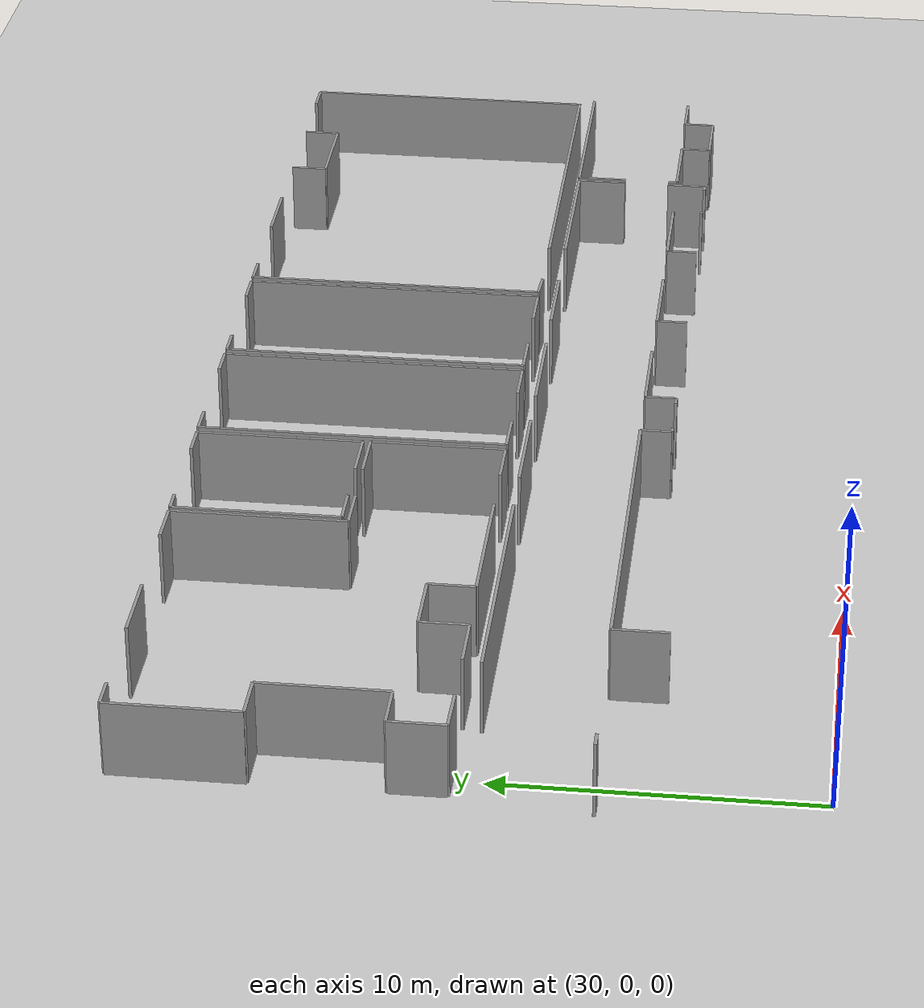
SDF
<sdf version="1.6">
 <world name="default">
  <model name="ground_plane">
   <static>1</static>
   <link name="link">
    <collision name="collision">
     <geometry><plane><normal>0 0 1</normal><size>100 100</size></plane></geometry>
     <surface><friction><ode><mu>100</mu><mu2>50</mu2></ode></friction></surface>
    </collision>
    <visual name="visual">
     <cast_shadows>0</cast_shadows>
     <geometry><plane><normal>0 0 1</normal><size>100 100</size></plane></geometry>
     <material>
      <script><uri>file://media/materials/scripts/gazebo.material</uri><name>Gazebo/Grey</name></script>
     </material>
    </visual>
   </link>
  </model>
  <model name="50055639">
   <static>1</static>
   <link name="Wall_416">
    <collision name="Wall_416_Collision">
     <geometry><box><size>0.527932570863 0.1 2.5</size></box></geometry>
     <pose>0.263966285431 0 1.25 0 0 0</pose>
    </collision>
    <visual name="Wall_416_Visual">
     <pose>0.263966285431 0 1.25 0 0 0</pose>
     <geometry><box><size>0.527932570863 0.1 2.5</size></box></geometry>
     <material>
      <script><uri>file://media/materials/scripts/gazebo.material</uri><name>Gazebo/Grey</name></script>
      <ambient>1 1 1 1</ambient>
     </material>
    </visual>
    <pose>99.7402861169 -14.176671448 0 0 0 3.14159265359</pose>
   </link>
   <link name="Wall_418">
    <collision name="Wall_418_Collision">
     <geometry><box><size>8.68721359753 0.1 2.5</size></box></geometry>
     <pose>4.34360679877 0 1.25 0 0 0</pose>
    </collision>
    <visual name="Wall_418_Visual">
     <pose>4.34360679877 0 1.25 0 0 0</pose>
     <geometry><box><size>8.68721359753 0.1 2.5</size></box></geometry>
     <material>
      <script><uri>file://media/materials/scripts/gazebo.material</uri><name>Gazebo/Grey</name></script>
      <ambient>1 1 1 1</ambient>
     </material>
    </visual>
    <pose>102.878051257 -10.5719036799 0 0 0 0.0</pose>
   </link>
   <link name="Wall_419">
    <collision name="Wall_419_Collision">
     <geometry><box><size>3.55805481156 0.1 2.5</size></box></geometry>
     <pose>1.77902740578 0 1.25 0 0 0</pose>
    </collision>
    <visual name="Wall_419_Visual">
     <pose>1.77902740578 0 1.25 0 0 0</pose>
     <geometry><box><size>3.55805481156 0.1 2.5</size></box></geometry>
     <material>
      <script><uri>file://media/materials/scripts/gazebo.material</uri><name>Gazebo/Grey</name></script>
      <ambient>1 1 1 1</ambient>
     </material>
    </visual>
    <pose>113.171022734 -10.5719036799 0 0 0 0.0</pose>
   </link>
   <link name="Wall_420">
    <collision name="Wall_420_Collision">
     <geometry><box><size>3.59994414755 0.1 2.5</size></box></geometry>
     <pose>1.79997207378 0 1.25 0 0 0</pose>
    </collision>
    <visual name="Wall_420_Visual">
     <pose>1.79997207378 0 1.25 0 0 0</pose>
     <geometry><box><size>3.59994414755 0.1 2.5</size></box></geometry>
     <material>
      <script><uri>file://media/materials/scripts/gazebo.material</uri><name>Gazebo/Grey</name></script>
      <ambient>1 1 1 1</ambient>
     </material>
    </visual>
    <pose>118.30310108 -10.5719036799 0 0 0 0.0</pose>
   </link>
   <link name="Wall_421">
    <collision name="Wall_421_Collision">
     <geometry><box><size>2.88655606189 0.1 2.5</size></box></geometry>
     <pose>1.44327803095 0 1.25 0 0 0</pose>
    </collision>
    <visual name="Wall_421_Visual">
     <pose>1.44327803095 0 1.25 0 0 0</pose>
     <geometry><box><size>2.88655606189 0.1 2.5</size></box></geometry>
     <material>
      <script><uri>file://media/materials/scripts/gazebo.material</uri><name>Gazebo/Grey</name></script>
      <ambient>1 1 1 1</ambient>
     </material>
    </visual>
    <pose>123.488493126 -10.5719036799 0 0 0 0.0</pose>
   </link>
   <link name="Wall_422">
    <collision name="Wall_422_Collision">
     <geometry><box><size>5.4189568286 0.1 2.5</size></box></geometry>
     <pose>2.7094784143 0 1.25 0 0 0</pose>
    </collision>
    <visual name="Wall_422_Visual">
     <pose>2.7094784143 0 1.25 0 0 0</pose>
     <geometry><box><size>5.4189568286 0.1 2.5</size></box></geometry>
     <material>
      <script><uri>file://media/materials/scripts/gazebo.material</uri><name>Gazebo/Grey</name></script>
      <ambient>1 1 1 1</ambient>
     </material>
    </visual>
    <pose>128.70308077 -10.5719036799 0 0 0 0.0</pose>
   </link>
   <link name="Wall_423">
    <collision name="Wall_423_Collision">
     <geometry><box><size>1.66998819482 0.1 2.5</size></box></geometry>
     <pose>0.834994097412 0 1.25 0 0 0</pose>
    </collision>
    <visual name="Wall_423_Visual">
     <pose>0.834994097412 0 1.25 0 0 0</pose>
     <geometry><box><size>1.66998819482 0.1 2.5</size></box></geometry>
     <material>
      <script><uri>file://media/materials/scripts/gazebo.material</uri><name>Gazebo/Grey</name></script>
      <ambient>1 1 1 1</ambient>
     </material>
    </visual>
    <pose>134.122037599 -10.5719036799 0 0 0 -1.57079632679</pose>
   </link>
   <link name="Wall_424">
    <collision name="Wall_424_Collision">
     <geometry><box><size>1.33792000406 0.1 2.5</size></box></geometry>
     <pose>0.668960002031 0 1.25 0 0 0</pose>
    </collision>
    <visual name="Wall_424_Visual">
     <pose>0.668960002031 0 1.25 0 0 0</pose>
     <geometry><box><size>1.33792000406 0.1 2.5</size></box></geometry>
     <material>
      <script><uri>file://media/materials/scripts/gazebo.material</uri><name>Gazebo/Grey</name></script>
      <ambient>1 1 1 1</ambient>
     </material>
    </visual>
    <pose>134.122037599 -13.8095685398 0 0 0 -1.57079632679</pose>
   </link>
   <link name="Wall_425">
    <collision name="Wall_425_Collision">
     <geometry><box><size>0.274184744665 0.1 2.5</size></box></geometry>
     <pose>0.137092372333 0 1.25 0 0 0</pose>
    </collision>
    <visual name="Wall_425_Visual">
     <pose>0.137092372333 0 1.25 0 0 0</pose>
     <geometry><box><size>0.274184744665 0.1 2.5</size></box></geometry>
     <material>
      <script><uri>file://media/materials/scripts/gazebo.material</uri><name>Gazebo/Grey</name></script>
      <ambient>1 1 1 1</ambient>
     </material>
    </visual>
    <pose>134.122037599 -15.1474885439 0 0 0 3.14159265359</pose>
   </link>
   <link name="Wall_426">
    <collision name="Wall_426_Collision">
     <geometry><box><size>0.125668007972 0.1 2.5</size></box></geometry>
     <pose>0.0628340039858 0 1.25 0 0 0</pose>
    </collision>
    <visual name="Wall_426_Visual">
     <pose>0.0628340039858 0 1.25 0 0 0</pose>
     <geometry><box><size>0.125668007972 0.1 2.5</size></box></geometry>
     <material>
      <script><uri>file://media/materials/scripts/gazebo.material</uri><name>Gazebo/Grey</name></script>
      <ambient>1 1 1 1</ambient>
     </material>
    </visual>
    <pose>132.10754135 -15.1474885439 0 0 0 3.14159265359</pose>
   </link>
   <link name="Wall_428">
    <collision name="Wall_428_Collision">
     <geometry><box><size>3.01349344368 0.1 2.5</size></box></geometry>
     <pose>1.50674672184 0 1.25 0 0 0</pose>
    </collision>
    <visual name="Wall_428_Visual">
     <pose>1.50674672184 0 1.25 0 0 0</pose>
     <geometry><box><size>3.01349344368 0.1 2.5</size></box></geometry>
     <material>
      <script><uri>file://media/materials/scripts/gazebo.material</uri><name>Gazebo/Grey</name></script>
      <ambient>1 1 1 1</ambient>
     </material>
    </visual>
    <pose>131.981873342 -14.1412559185 0 0 0 3.14159265359</pose>
   </link>
   <link name="Wall_429">
    <collision name="Wall_429_Collision">
     <geometry><box><size>1.02654260653 0.1 2.5</size></box></geometry>
     <pose>0.513271303266 0 1.25 0 0 0</pose>
    </collision>
    <visual name="Wall_429_Visual">
     <pose>0.513271303266 0 1.25 0 0 0</pose>
     <geometry><box><size>1.02654260653 0.1 2.5</size></box></geometry>
     <material>
      <script><uri>file://media/materials/scripts/gazebo.material</uri><name>Gazebo/Grey</name></script>
      <ambient>1 1 1 1</ambient>
     </material>
    </visual>
    <pose>128.968379898 -14.1412559185 0 0 0 -1.57079632679</pose>
   </link>
   <link name="Wall_433">
    <collision name="Wall_433_Collision">
     <geometry><box><size>3.00460782696 0.1 2.5</size></box></geometry>
     <pose>1.50230391348 0 1.25 0 0 0</pose>
    </collision>
    <visual name="Wall_433_Visual">
     <pose>1.50230391348 0 1.25 0 0 0</pose>
     <geometry><box><size>3.00460782696 0.1 2.5</size></box></geometry>
     <material>
      <script><uri>file://media/materials/scripts/gazebo.material</uri><name>Gazebo/Grey</name></script>
      <ambient>1 1 1 1</ambient>
     </material>
    </visual>
    <pose>126.842178753 -14.1506492847 0 0 0 3.14159265359</pose>
   </link>
   <link name="Wall_434">
    <collision name="Wall_434_Collision">
     <geometry><box><size>1.01600680384 0.1 2.5</size></box></geometry>
     <pose>0.508003401922 0 1.25 0 0 0</pose>
    </collision>
    <visual name="Wall_434_Visual">
     <pose>0.508003401922 0 1.25 0 0 0</pose>
     <geometry><box><size>1.01600680384 0.1 2.5</size></box></geometry>
     <material>
      <script><uri>file://media/materials/scripts/gazebo.material</uri><name>Gazebo/Grey</name></script>
      <ambient>1 1 1 1</ambient>
     </material>
    </visual>
    <pose>123.837570926 -14.1506492847 0 0 0 -1.57079632679</pose>
   </link>
   <link name="Wall_438">
    <collision name="Wall_438_Collision">
     <geometry><box><size>3.0287259295 0.1 2.5</size></box></geometry>
     <pose>1.51436296475 0 1.25 0 0 0</pose>
    </collision>
    <visual name="Wall_438_Visual">
     <pose>1.51436296475 0 1.25 0 0 0</pose>
     <geometry><box><size>3.0287259295 0.1 2.5</size></box></geometry>
     <material>
      <script><uri>file://media/materials/scripts/gazebo.material</uri><name>Gazebo/Grey</name></script>
      <ambient>1 1 1 1</ambient>
     </material>
    </visual>
    <pose>121.71771665 -14.1313548027 0 0 0 3.14159265359</pose>
   </link>
   <link name="Wall_439">
    <collision name="Wall_439_Collision">
     <geometry><box><size>1.00978687214 0.1 2.5</size></box></geometry>
     <pose>0.504893436068 0 1.25 0 0 0</pose>
    </collision>
    <visual name="Wall_439_Visual">
     <pose>0.504893436068 0 1.25 0 0 0</pose>
     <geometry><box><size>1.00978687214 0.1 2.5</size></box></geometry>
     <material>
      <script><uri>file://media/materials/scripts/gazebo.material</uri><name>Gazebo/Grey</name></script>
      <ambient>1 1 1 1</ambient>
     </material>
    </visual>
    <pose>118.688990721 -14.1313548027 0 0 0 -1.57079632679</pose>
   </link>
   <link name="Wall_440">
    <collision name="Wall_440_Collision">
     <geometry><box><size>0.341461557014 0.1 2.5</size></box></geometry>
     <pose>0.170730778507 0 1.25 0 0 0</pose>
    </collision>
    <visual name="Wall_440_Visual">
     <pose>0.170730778507 0 1.25 0 0 0</pose>
     <geometry><box><size>0.341461557014 0.1 2.5</size></box></geometry>
     <material>
      <script><uri>file://media/materials/scripts/gazebo.material</uri><name>Gazebo/Grey</name></script>
      <ambient>1 1 1 1</ambient>
     </material>
    </visual>
    <pose>118.688990721 -15.1411416748 0 0 0 3.14159265359</pose>
   </link>
   <link name="Wall_441">
    <collision name="Wall_441_Collision">
     <geometry><box><size>0.242450399218 0.1 2.5</size></box></geometry>
     <pose>0.121225199609 0 1.25 0 0 0</pose>
    </collision>
    <visual name="Wall_441_Visual">
     <pose>0.121225199609 0 1.25 0 0 0</pose>
     <geometry><box><size>0.242450399218 0.1 2.5</size></box></geometry>
     <material>
      <script><uri>file://media/materials/scripts/gazebo.material</uri><name>Gazebo/Grey</name></script>
      <ambient>1 1 1 1</ambient>
     </material>
    </visual>
    <pose>116.774775003 -15.1411416748 0 0 0 3.14159265359</pose>
   </link>
   <link name="Wall_442">
    <collision name="Wall_442_Collision">
     <geometry><box><size>1.00826362355 0.1 2.5</size></box></geometry>
     <pose>0.504131811777 0 1.25 0 0 0</pose>
    </collision>
    <visual name="Wall_442_Visual">
     <pose>0.504131811777 0 1.25 0 0 0</pose>
     <geometry><box><size>1.00826362355 0.1 2.5</size></box></geometry>
     <material>
      <script><uri>file://media/materials/scripts/gazebo.material</uri><name>Gazebo/Grey</name></script>
      <ambient>1 1 1 1</ambient>
     </material>
    </visual>
    <pose>116.532324604 -15.1411416748 0 0 0 1.57079632679</pose>
   </link>
   <link name="Wall_443">
    <collision name="Wall_443_Collision">
     <geometry><box><size>11.5175363993 0.1 2.5</size></box></geometry>
     <pose>5.75876819965 0 1.25 0 0 0</pose>
    </collision>
    <visual name="Wall_443_Visual">
     <pose>5.75876819965 0 1.25 0 0 0</pose>
     <geometry><box><size>11.5175363993 0.1 2.5</size></box></geometry>
     <material>
      <script><uri>file://media/materials/scripts/gazebo.material</uri><name>Gazebo/Grey</name></script>
      <ambient>1 1 1 1</ambient>
     </material>
    </visual>
    <pose>116.532324604 -14.1328780513 0 0 0 3.14159265359</pose>
   </link>
   <link name="Wall_444">
    <collision name="Wall_444_Collision">
     <geometry><box><size>1.76100229757 0.1 2.5</size></box></geometry>
     <pose>0.880501148783 0 1.25 0 0 0</pose>
    </collision>
    <visual name="Wall_444_Visual">
     <pose>0.880501148783 0 1.25 0 0 0</pose>
     <geometry><box><size>1.76100229757 0.1 2.5</size></box></geometry>
     <material>
      <script><uri>file://media/materials/scripts/gazebo.material</uri><name>Gazebo/Grey</name></script>
      <ambient>1 1 1 1</ambient>
     </material>
    </visual>
    <pose>105.014788205 -14.1328780513 0 0 0 -1.57079632679</pose>
   </link>
   <link name="Wall_447">
    <collision name="Wall_447_Collision">
     <geometry><box><size>1.76607979284 0.1 2.5</size></box></geometry>
     <pose>0.883039896419 0 1.25 0 0 0</pose>
    </collision>
    <visual name="Wall_447_Visual">
     <pose>0.883039896419 0 1.25 0 0 0</pose>
     <geometry><box><size>1.76607979284 0.1 2.5</size></box></geometry>
     <material>
      <script><uri>file://media/materials/scripts/gazebo.material</uri><name>Gazebo/Grey</name></script>
      <ambient>1 1 1 1</ambient>
     </material>
    </visual>
    <pose>99.6826565455 -9.97263230049 0 0 0 1.57079632679</pose>
   </link>
   <link name="Wall_448">
    <collision name="Wall_448_Collision">
     <geometry><box><size>1.46853856992 0.1 2.5</size></box></geometry>
     <pose>0.734269284962 0 1.25 0 0 0</pose>
    </collision>
    <visual name="Wall_448_Visual">
     <pose>0.734269284962 0 1.25 0 0 0</pose>
     <geometry><box><size>1.46853856992 0.1 2.5</size></box></geometry>
     <material>
      <script><uri>file://media/materials/scripts/gazebo.material</uri><name>Gazebo/Grey</name></script>
      <ambient>1 1 1 1</ambient>
     </material>
    </visual>
    <pose>99.6826565455 -8.20655250765 0 0 0 0.0</pose>
   </link>
   <link name="Wall_449">
    <collision name="Wall_449_Collision">
     <geometry><box><size>4.03394305589 0.1 2.5</size></box></geometry>
     <pose>2.01697152795 0 1.25 0 0 0</pose>
    </collision>
    <visual name="Wall_449_Visual">
     <pose>2.01697152795 0 1.25 0 0 0</pose>
     <geometry><box><size>4.03394305589 0.1 2.5</size></box></geometry>
     <material>
      <script><uri>file://media/materials/scripts/gazebo.material</uri><name>Gazebo/Grey</name></script>
      <ambient>1 1 1 1</ambient>
     </material>
    </visual>
    <pose>101.151195115 -8.20655250765 0 0 0 1.57079632679</pose>
   </link>
   <link name="Wall_450">
    <collision name="Wall_450_Collision">
     <geometry><box><size>1.47120425494 0.1 2.5</size></box></geometry>
     <pose>0.735602127471 0 1.25 0 0 0</pose>
    </collision>
    <visual name="Wall_450_Visual">
     <pose>0.735602127471 0 1.25 0 0 0</pose>
     <geometry><box><size>1.47120425494 0.1 2.5</size></box></geometry>
     <material>
      <script><uri>file://media/materials/scripts/gazebo.material</uri><name>Gazebo/Grey</name></script>
      <ambient>1 1 1 1</ambient>
     </material>
    </visual>
    <pose>101.151195115 -4.17260945176 0 0 0 3.14159265359</pose>
   </link>
   <link name="Wall_451">
    <collision name="Wall_451_Collision">
     <geometry><box><size>4.15269297655 0.1 2.5</size></box></geometry>
     <pose>2.07634648828 0 1.25 0 0 0</pose>
    </collision>
    <visual name="Wall_451_Visual">
     <pose>2.07634648828 0 1.25 0 0 0</pose>
     <geometry><box><size>4.15269297655 0.1 2.5</size></box></geometry>
     <material>
      <script><uri>file://media/materials/scripts/gazebo.material</uri><name>Gazebo/Grey</name></script>
      <ambient>1 1 1 1</ambient>
     </material>
    </visual>
    <pose>99.6799908605 -4.17260945176 0 0 0 1.57079632679</pose>
   </link>
   <link name="Wall_452">
    <collision name="Wall_452_Collision">
     <geometry><box><size>0.997093133957 0.1 2.5</size></box></geometry>
     <pose>0.498546566979 0 1.25 0 0 0</pose>
    </collision>
    <visual name="Wall_452_Visual">
     <pose>0.498546566979 0 1.25 0 0 0</pose>
     <geometry><box><size>0.997093133957 0.1 2.5</size></box></geometry>
     <material>
      <script><uri>file://media/materials/scripts/gazebo.material</uri><name>Gazebo/Grey</name></script>
      <ambient>1 1 1 1</ambient>
     </material>
    </visual>
    <pose>99.6799908605 -0.0199164752028 0 0 0 0.0</pose>
   </link>
   <link name="Wall_453">
    <collision name="Wall_453_Collision">
     <geometry><box><size>2.35151499765 0.1 2.5</size></box></geometry>
     <pose>1.17575749883 0 1.25 0 0 0</pose>
    </collision>
    <visual name="Wall_453_Visual">
     <pose>1.17575749883 0 1.25 0 0 0</pose>
     <geometry><box><size>2.35151499765 0.1 2.5</size></box></geometry>
     <material>
      <script><uri>file://media/materials/scripts/gazebo.material</uri><name>Gazebo/Grey</name></script>
      <ambient>1 1 1 1</ambient>
     </material>
    </visual>
    <pose>103.472879828 -0.0199164752028 0 0 0 0.0</pose>
   </link>
   <link name="Wall_454">
    <collision name="Wall_454_Collision">
     <geometry><box><size>1.4296957311 0.1 2.5</size></box></geometry>
     <pose>0.714847865548 0 1.25 0 0 0</pose>
    </collision>
    <visual name="Wall_454_Visual">
     <pose>0.714847865548 0 1.25 0 0 0</pose>
     <geometry><box><size>1.4296957311 0.1 2.5</size></box></geometry>
     <material>
      <script><uri>file://media/materials/scripts/gazebo.material</uri><name>Gazebo/Grey</name></script>
      <ambient>1 1 1 1</ambient>
     </material>
    </visual>
    <pose>108.611305043 -0.0199164752028 0 0 0 0.0</pose>
   </link>
   <link name="Wall_455">
    <collision name="Wall_455_Collision">
     <geometry><box><size>5.59965219157 0.1 2.5</size></box></geometry>
     <pose>2.79982609579 0 1.25 0 0 0</pose>
    </collision>
    <visual name="Wall_455_Visual">
     <pose>2.79982609579 0 1.25 0 0 0</pose>
     <geometry><box><size>5.59965219157 0.1 2.5</size></box></geometry>
     <material>
      <script><uri>file://media/materials/scripts/gazebo.material</uri><name>Gazebo/Grey</name></script>
      <ambient>1 1 1 1</ambient>
     </material>
    </visual>
    <pose>110.041000774 -0.0199164752028 0 0 0 -1.57079632679</pose>
   </link>
   <link name="Wall_456">
    <collision name="Wall_456_Collision">
     <geometry><box><size>1.50903159471 0.1 2.5</size></box></geometry>
     <pose>0.754515797357 0 1.25 0 0 0</pose>
    </collision>
    <visual name="Wall_456_Visual">
     <pose>0.754515797357 0 1.25 0 0 0</pose>
     <geometry><box><size>1.50903159471 0.1 2.5</size></box></geometry>
     <material>
      <script><uri>file://media/materials/scripts/gazebo.material</uri><name>Gazebo/Grey</name></script>
      <ambient>1 1 1 1</ambient>
     </material>
    </visual>
    <pose>110.041000774 -5.61956866678 0 0 0 0.0</pose>
   </link>
   <link name="Wall_457">
    <collision name="Wall_457_Collision">
     <geometry><box><size>1.72761776616 0.1 2.5</size></box></geometry>
     <pose>0.863808883078 0 1.25 0 0 0</pose>
    </collision>
    <visual name="Wall_457_Visual">
     <pose>0.863808883078 0 1.25 0 0 0</pose>
     <geometry><box><size>1.72761776616 0.1 2.5</size></box></geometry>
     <material>
      <script><uri>file://media/materials/scripts/gazebo.material</uri><name>Gazebo/Grey</name></script>
      <ambient>1 1 1 1</ambient>
     </material>
    </visual>
    <pose>113.118978408 -5.61956866678 0 0 0 0.0</pose>
   </link>
   <link name="Wall_458">
    <collision name="Wall_458_Collision">
     <geometry><box><size>4.34011602077 0.1 2.5</size></box></geometry>
     <pose>2.17005801038 0 1.25 0 0 0</pose>
    </collision>
    <visual name="Wall_458_Visual">
     <pose>2.17005801038 0 1.25 0 0 0</pose>
     <geometry><box><size>4.34011602077 0.1 2.5</size></box></geometry>
     <material>
      <script><uri>file://media/materials/scripts/gazebo.material</uri><name>Gazebo/Grey</name></script>
      <ambient>1 1 1 1</ambient>
     </material>
    </visual>
    <pose>114.846596174 -5.61956866678 0 0 0 -1.57079632679</pose>
   </link>
   <link name="Wall_459">
    <collision name="Wall_459_Collision">
     <geometry><box><size>1.59433351528 0.1 2.5</size></box></geometry>
     <pose>0.797166757638 0 1.25 0 0 0</pose>
    </collision>
    <visual name="Wall_459_Visual">
     <pose>0.797166757638 0 1.25 0 0 0</pose>
     <geometry><box><size>1.59433351528 0.1 2.5</size></box></geometry>
     <material>
      <script><uri>file://media/materials/scripts/gazebo.material</uri><name>Gazebo/Grey</name></script>
      <ambient>1 1 1 1</ambient>
     </material>
    </visual>
    <pose>114.846596174 -9.95968468754 0 0 0 3.14159265359</pose>
   </link>
   <link name="Wall_460">
    <collision name="Wall_460_Collision">
     <geometry><box><size>4.70214143363 0.1 2.5</size></box></geometry>
     <pose>2.35107071682 0 1.25 0 0 0</pose>
    </collision>
    <visual name="Wall_460_Visual">
     <pose>2.35107071682 0 1.25 0 0 0</pose>
     <geometry><box><size>4.70214143363 0.1 2.5</size></box></geometry>
     <material>
      <script><uri>file://media/materials/scripts/gazebo.material</uri><name>Gazebo/Grey</name></script>
      <ambient>1 1 1 1</ambient>
     </material>
    </visual>
    <pose>111.525914266 -9.95968468754 0 0 0 3.14159265359</pose>
   </link>
   <link name="Wall_461">
    <collision name="Wall_461_Collision">
     <geometry><box><size>1.4882138641 0.1 2.5</size></box></geometry>
     <pose>0.74410693205 0 1.25 0 0 0</pose>
    </collision>
    <visual name="Wall_461_Visual">
     <pose>0.74410693205 0 1.25 0 0 0</pose>
     <geometry><box><size>1.4882138641 0.1 2.5</size></box></geometry>
     <material>
      <script><uri>file://media/materials/scripts/gazebo.material</uri><name>Gazebo/Grey</name></script>
      <ambient>1 1 1 1</ambient>
     </material>
    </visual>
    <pose>106.823772833 -9.95968468754 0 0 0 1.57079632679</pose>
   </link>
   <link name="Wall_462">
    <collision name="Wall_462_Collision">
     <geometry><box><size>2.04204166085 0.1 2.5</size></box></geometry>
     <pose>1.02102083042 0 1.25 0 0 0</pose>
    </collision>
    <visual name="Wall_462_Visual">
     <pose>1.02102083042 0 1.25 0 0 0</pose>
     <geometry><box><size>2.04204166085 0.1 2.5</size></box></geometry>
     <material>
      <script><uri>file://media/materials/scripts/gazebo.material</uri><name>Gazebo/Grey</name></script>
      <ambient>1 1 1 1</ambient>
     </material>
    </visual>
    <pose>106.823772833 -8.47147082344 0 0 0 3.14159265359</pose>
   </link>
   <link name="Wall_463">
    <collision name="Wall_463_Collision">
     <geometry><box><size>1.52324858147 0.1 2.5</size></box></geometry>
     <pose>0.761624290737 0 1.25 0 0 0</pose>
    </collision>
    <visual name="Wall_463_Visual">
     <pose>0.761624290737 0 1.25 0 0 0</pose>
     <geometry><box><size>1.52324858147 0.1 2.5</size></box></geometry>
     <material>
      <script><uri>file://media/materials/scripts/gazebo.material</uri><name>Gazebo/Grey</name></script>
      <ambient>1 1 1 1</ambient>
     </material>
    </visual>
    <pose>104.781731172 -8.47147082344 0 0 0 -1.57079632679</pose>
   </link>
   <link name="Wall_464">
    <collision name="Wall_464_Collision">
     <geometry><box><size>1.82015511748 0.1 2.5</size></box></geometry>
     <pose>0.91007755874 0 1.25 0 0 0</pose>
    </collision>
    <visual name="Wall_464_Visual">
     <pose>0.91007755874 0 1.25 0 0 0</pose>
     <geometry><box><size>1.82015511748 0.1 2.5</size></box></geometry>
     <material>
      <script><uri>file://media/materials/scripts/gazebo.material</uri><name>Gazebo/Grey</name></script>
      <ambient>1 1 1 1</ambient>
     </material>
    </visual>
    <pose>104.781731172 -9.99471940492 0 0 0 3.14159265359</pose>
   </link>
   <link name="Wall_465">
    <collision name="Wall_465_Collision">
     <geometry><box><size>1.51579326621 0.1 2.5</size></box></geometry>
     <pose>0.757896633106 0 1.25 0 0 0</pose>
    </collision>
    <visual name="Wall_465_Visual">
     <pose>0.757896633106 0 1.25 0 0 0</pose>
     <geometry><box><size>1.51579326621 0.1 2.5</size></box></geometry>
     <material>
      <script><uri>file://media/materials/scripts/gazebo.material</uri><name>Gazebo/Grey</name></script>
      <ambient>1 1 1 1</ambient>
     </material>
    </visual>
    <pose>101.198288884 -9.99471940492 0 0 0 3.12702082074</pose>
   </link>
   <link name="Wall_466">
    <collision name="Wall_466_Collision">
     <geometry><box><size>5.37553155029 0.1 2.5</size></box></geometry>
     <pose>2.68776577514 0 1.25 0 0 0</pose>
    </collision>
    <visual name="Wall_466_Visual">
     <pose>2.68776577514 0 1.25 0 0 0</pose>
     <geometry><box><size>5.37553155029 0.1 2.5</size></box></geometry>
     <material>
      <script><uri>file://media/materials/scripts/gazebo.material</uri><name>Gazebo/Grey</name></script>
      <ambient>1 1 1 1</ambient>
     </material>
    </visual>
    <pose>110.256667386 -5.39184300385 0 0 0 1.57079632679</pose>
   </link>
   <link name="Wall_467">
    <collision name="Wall_467_Collision">
     <geometry><box><size>0.713388085657 0.1 2.5</size></box></geometry>
     <pose>0.356694042829 0 1.25 0 0 0</pose>
    </collision>
    <visual name="Wall_467_Visual">
     <pose>0.356694042829 0 1.25 0 0 0</pose>
     <geometry><box><size>0.713388085657 0.1 2.5</size></box></geometry>
     <material>
      <script><uri>file://media/materials/scripts/gazebo.material</uri><name>Gazebo/Grey</name></script>
      <ambient>1 1 1 1</ambient>
     </material>
    </visual>
    <pose>110.256667386 -0.01631145356 0 0 0 0.0</pose>
   </link>
   <link name="Wall_468">
    <collision name="Wall_468_Collision">
     <geometry><box><size>1.03834778304 0.1 2.5</size></box></geometry>
     <pose>0.519173891519 0 1.25 0 0 0</pose>
    </collision>
    <visual name="Wall_468_Visual">
     <pose>0.519173891519 0 1.25 0 0 0</pose>
     <geometry><box><size>1.03834778304 0.1 2.5</size></box></geometry>
     <material>
      <script><uri>file://media/materials/scripts/gazebo.material</uri><name>Gazebo/Grey</name></script>
      <ambient>1 1 1 1</ambient>
     </material>
    </visual>
    <pose>113.785399662 -0.01631145356 0 0 0 0.0</pose>
   </link>
   <link name="Wall_469">
    <collision name="Wall_469_Collision">
     <geometry><box><size>5.36118762614 0.1 2.5</size></box></geometry>
     <pose>2.68059381307 0 1.25 0 0 0</pose>
    </collision>
    <visual name="Wall_469_Visual">
     <pose>2.68059381307 0 1.25 0 0 0</pose>
     <geometry><box><size>5.36118762614 0.1 2.5</size></box></geometry>
     <material>
      <script><uri>file://media/materials/scripts/gazebo.material</uri><name>Gazebo/Grey</name></script>
      <ambient>1 1 1 1</ambient>
     </material>
    </visual>
    <pose>114.823747445 -0.01631145356 0 0 0 -1.57079632679</pose>
   </link>
   <link name="Wall_470">
    <collision name="Wall_470_Collision">
     <geometry><box><size>1.68953655162 0.1 2.5</size></box></geometry>
     <pose>0.84476827581 0 1.25 0 0 0</pose>
    </collision>
    <visual name="Wall_470_Visual">
     <pose>0.84476827581 0 1.25 0 0 0</pose>
     <geometry><box><size>1.68953655162 0.1 2.5</size></box></geometry>
     <material>
      <script><uri>file://media/materials/scripts/gazebo.material</uri><name>Gazebo/Grey</name></script>
      <ambient>1 1 1 1</ambient>
     </material>
    </visual>
    <pose>114.823747445 -5.3774990797 0 0 0 3.14159265359</pose>
   </link>
   <link name="Wall_471">
    <collision name="Wall_471_Collision">
     <geometry><box><size>1.30867608051 0.1 2.5</size></box></geometry>
     <pose>0.654338040253 0 1.25 0 0 0</pose>
    </collision>
    <visual name="Wall_471_Visual">
     <pose>0.654338040253 0 1.25 0 0 0</pose>
     <geometry><box><size>1.30867608051 0.1 2.5</size></box></geometry>
     <material>
      <script><uri>file://media/materials/scripts/gazebo.material</uri><name>Gazebo/Grey</name></script>
      <ambient>1 1 1 1</ambient>
     </material>
    </visual>
    <pose>111.565264855 -5.3774990797 0 0 0 -3.1306317966</pose>
   </link>
   <link name="Wall_472">
    <collision name="Wall_472_Collision">
     <geometry><box><size>9.95968468754 0.1 2.5</size></box></geometry>
     <pose>4.97984234377 0 1.25 0 0 0</pose>
    </collision>
    <visual name="Wall_472_Visual">
     <pose>4.97984234377 0 1.25 0 0 0</pose>
     <geometry><box><size>9.95968468754 0.1 2.5</size></box></geometry>
     <material>
      <script><uri>file://media/materials/scripts/gazebo.material</uri><name>Gazebo/Grey</name></script>
      <ambient>1 1 1 1</ambient>
     </material>
    </visual>
    <pose>115.147437769 -9.95968468754 0 0 0 1.57079632679</pose>
   </link>
   <link name="Wall_473">
    <collision name="Wall_473_Collision">
     <geometry><box><size>0.990111577959 0.1 2.5</size></box></geometry>
     <pose>0.495055788979 0 1.25 0 0 0</pose>
    </collision>
    <visual name="Wall_473_Visual">
     <pose>0.495055788979 0 1.25 0 0 0</pose>
     <geometry><box><size>0.990111577959 0.1 2.5</size></box></geometry>
     <material>
      <script><uri>file://media/materials/scripts/gazebo.material</uri><name>Gazebo/Grey</name></script>
      <ambient>1 1 1 1</ambient>
     </material>
    </visual>
    <pose>115.147437769 -0.0 0 0 0 0.0</pose>
   </link>
   <link name="Wall_474">
    <collision name="Wall_474_Collision">
     <geometry><box><size>1.05231089504 0.1 2.5</size></box></geometry>
     <pose>0.526155447518 0 1.25 0 0 0</pose>
    </collision>
    <visual name="Wall_474_Visual">
     <pose>0.526155447518 0 1.25 0 0 0</pose>
     <geometry><box><size>1.05231089504 0.1 2.5</size></box></geometry>
     <material>
      <script><uri>file://media/materials/scripts/gazebo.material</uri><name>Gazebo/Grey</name></script>
      <ambient>1 1 1 1</ambient>
     </material>
    </visual>
    <pose>118.925094251 -0.0 0 0 0 0.0</pose>
   </link>
   <link name="Wall_475">
    <collision name="Wall_475_Collision">
     <geometry><box><size>9.96615849401 0.1 2.5</size></box></geometry>
     <pose>4.98307924701 0 1.25 0 0 0</pose>
    </collision>
    <visual name="Wall_475_Visual">
     <pose>4.98307924701 0 1.25 0 0 0</pose>
     <geometry><box><size>9.96615849401 0.1 2.5</size></box></geometry>
     <material>
      <script><uri>file://media/materials/scripts/gazebo.material</uri><name>Gazebo/Grey</name></script>
      <ambient>1 1 1 1</ambient>
     </material>
    </visual>
    <pose>119.977405146 -0.0 0 0 0 -1.57079632679</pose>
   </link>
   <link name="Wall_476">
    <collision name="Wall_476_Collision">
     <geometry><box><size>1.53467294584 0.1 2.5</size></box></geometry>
     <pose>0.767336472918 0 1.25 0 0 0</pose>
    </collision>
    <visual name="Wall_476_Visual">
     <pose>0.767336472918 0 1.25 0 0 0</pose>
     <geometry><box><size>1.53467294584 0.1 2.5</size></box></geometry>
     <material>
      <script><uri>file://media/materials/scripts/gazebo.material</uri><name>Gazebo/Grey</name></script>
      <ambient>1 1 1 1</ambient>
     </material>
    </visual>
    <pose>119.977405146 -9.96615849401 0 0 0 3.14159265359</pose>
   </link>
   <link name="Wall_477">
    <collision name="Wall_477_Collision">
     <geometry><box><size>1.49914445703 0.1 2.5</size></box></geometry>
     <pose>0.749572228515 0 1.25 0 0 0</pose>
    </collision>
    <visual name="Wall_477_Visual">
     <pose>0.749572228515 0 1.25 0 0 0</pose>
     <geometry><box><size>1.49914445703 0.1 2.5</size></box></geometry>
     <material>
      <script><uri>file://media/materials/scripts/gazebo.material</uri><name>Gazebo/Grey</name></script>
      <ambient>1 1 1 1</ambient>
     </material>
    </visual>
    <pose>116.646568248 -9.96615849401 0 0 0 3.13727430617</pose>
   </link>
   <link name="Wall_478">
    <collision name="Wall_478_Collision">
     <geometry><box><size>9.95213191333 0.1 2.5</size></box></geometry>
     <pose>4.97606595666 0 1.25 0 0 0</pose>
    </collision>
    <visual name="Wall_478_Visual">
     <pose>4.97606595666 0 1.25 0 0 0</pose>
     <geometry><box><size>9.95213191333 0.1 2.5</size></box></geometry>
     <material>
      <script><uri>file://media/materials/scripts/gazebo.material</uri><name>Gazebo/Grey</name></script>
      <ambient>1 1 1 1</ambient>
     </material>
    </visual>
    <pose>120.289671105 -9.96298505947 0 0 0 1.57079632679</pose>
   </link>
   <link name="Wall_479">
    <collision name="Wall_479_Collision">
     <geometry><box><size>0.950760989604 0.1 2.5</size></box></geometry>
     <pose>0.475380494802 0 1.25 0 0 0</pose>
    </collision>
    <visual name="Wall_479_Visual">
     <pose>0.475380494802 0 1.25 0 0 0</pose>
     <geometry><box><size>0.950760989604 0.1 2.5</size></box></geometry>
     <material>
      <script><uri>file://media/materials/scripts/gazebo.material</uri><name>Gazebo/Grey</name></script>
      <ambient>1 1 1 1</ambient>
     </material>
    </visual>
    <pose>120.289671105 -0.010853146143 0 0 0 0.0</pose>
   </link>
   <link name="Wall_480">
    <collision name="Wall_480_Collision">
     <geometry><box><size>1.05992713794 0.1 2.5</size></box></geometry>
     <pose>0.529963568971 0 1.25 0 0 0</pose>
    </collision>
    <visual name="Wall_480_Visual">
     <pose>0.529963568971 0 1.25 0 0 0</pose>
     <geometry><box><size>1.05992713794 0.1 2.5</size></box></geometry>
     <material>
      <script><uri>file://media/materials/scripts/gazebo.material</uri><name>Gazebo/Grey</name></script>
      <ambient>1 1 1 1</ambient>
     </material>
    </visual>
    <pose>124.069866335 -0.010853146143 0 0 0 0.0</pose>
   </link>
   <link name="Wall_481">
    <collision name="Wall_481_Collision">
     <geometry><box><size>9.9488315414 0.1 2.5</size></box></geometry>
     <pose>4.9744157707 0 1.25 0 0 0</pose>
    </collision>
    <visual name="Wall_481_Visual">
     <pose>4.9744157707 0 1.25 0 0 0</pose>
     <geometry><box><size>9.9488315414 0.1 2.5</size></box></geometry>
     <material>
      <script><uri>file://media/materials/scripts/gazebo.material</uri><name>Gazebo/Grey</name></script>
      <ambient>1 1 1 1</ambient>
     </material>
    </visual>
    <pose>125.129793473 -0.010853146143 0 0 0 -1.57079632679</pose>
   </link>
   <link name="Wall_482">
    <collision name="Wall_482_Collision">
     <geometry><box><size>1.55244417929 0.1 2.5</size></box></geometry>
     <pose>0.776222089643 0 1.25 0 0 0</pose>
    </collision>
    <visual name="Wall_482_Visual">
     <pose>0.776222089643 0 1.25 0 0 0</pose>
     <geometry><box><size>1.55244417929 0.1 2.5</size></box></geometry>
     <material>
      <script><uri>file://media/materials/scripts/gazebo.material</uri><name>Gazebo/Grey</name></script>
      <ambient>1 1 1 1</ambient>
     </material>
    </visual>
    <pose>125.129793473 -9.95968468754 0 0 0 3.14159265359</pose>
   </link>
   <link name="Wall_483">
    <collision name="Wall_483_Collision">
     <geometry><box><size>1.52325215687 0.1 2.5</size></box></geometry>
     <pose>0.761626078437 0 1.25 0 0 0</pose>
    </collision>
    <visual name="Wall_483_Visual">
     <pose>0.761626078437 0 1.25 0 0 0</pose>
     <geometry><box><size>1.52325215687 0.1 2.5</size></box></geometry>
     <material>
      <script><uri>file://media/materials/scripts/gazebo.material</uri><name>Gazebo/Grey</name></script>
      <ambient>1 1 1 1</ambient>
     </material>
    </visual>
    <pose>121.812919687 -9.95968468754 0 0 0 -3.13942599031</pose>
   </link>
   <link name="Wall_484">
    <collision name="Wall_484_Collision">
     <geometry><box><size>9.92154000432 0.1 2.5</size></box></geometry>
     <pose>4.96077000216 0 1.25 0 0 0</pose>
    </collision>
    <visual name="Wall_484_Visual">
     <pose>4.96077000216 0 1.25 0 0 0</pose>
     <geometry><box><size>9.92154000432 0.1 2.5</size></box></geometry>
     <material>
      <script><uri>file://media/materials/scripts/gazebo.material</uri><name>Gazebo/Grey</name></script>
      <ambient>1 1 1 1</ambient>
     </material>
    </visual>
    <pose>125.430635068 -9.93785145788 0 0 0 1.57079632679</pose>
   </link>
   <link name="Wall_485">
    <collision name="Wall_485_Collision">
     <geometry><box><size>0.974879092144 0.1 2.5</size></box></geometry>
     <pose>0.487439546072 0 1.25 0 0 0</pose>
    </collision>
    <visual name="Wall_485_Visual">
     <pose>0.487439546072 0 1.25 0 0 0</pose>
     <geometry><box><size>0.974879092144 0.1 2.5</size></box></geometry>
     <material>
      <script><uri>file://media/materials/scripts/gazebo.material</uri><name>Gazebo/Grey</name></script>
      <ambient>1 1 1 1</ambient>
     </material>
    </visual>
    <pose>125.430635068 -0.01631145356 0 0 0 0.0</pose>
   </link>
   <link name="Wall_486">
    <collision name="Wall_486_Collision">
     <geometry><box><size>2.35088031074 0.1 2.5</size></box></geometry>
     <pose>1.17544015537 0 1.25 0 0 0</pose>
    </collision>
    <visual name="Wall_486_Visual">
     <pose>1.17544015537 0 1.25 0 0 0</pose>
     <geometry><box><size>2.35088031074 0.1 2.5</size></box></geometry>
     <material>
      <script><uri>file://media/materials/scripts/gazebo.material</uri><name>Gazebo/Grey</name></script>
      <ambient>1 1 1 1</ambient>
     </material>
    </visual>
    <pose>129.223524036 -0.01631145356 0 0 0 0.0</pose>
   </link>
   <link name="Wall_487">
    <collision name="Wall_487_Collision">
     <geometry><box><size>1.2084311809 0.1 2.5</size></box></geometry>
     <pose>0.604215590449 0 1.25 0 0 0</pose>
    </collision>
    <visual name="Wall_487_Visual">
     <pose>0.604215590449 0 1.25 0 0 0</pose>
     <geometry><box><size>1.2084311809 0.1 2.5</size></box></geometry>
     <material>
      <script><uri>file://media/materials/scripts/gazebo.material</uri><name>Gazebo/Grey</name></script>
      <ambient>1 1 1 1</ambient>
     </material>
    </visual>
    <pose>134.028103936 -0.01631145356 0 0 0 -1.57079632679</pose>
   </link>
   <link name="Wall_488">
    <collision name="Wall_488_Collision">
     <geometry><box><size>3.01095469605 0.1 2.5</size></box></geometry>
     <pose>1.50547734802 0 1.25 0 0 0</pose>
    </collision>
    <visual name="Wall_488_Visual">
     <pose>1.50547734802 0 1.25 0 0 0</pose>
     <geometry><box><size>3.01095469605 0.1 2.5</size></box></geometry>
     <material>
      <script><uri>file://media/materials/scripts/gazebo.material</uri><name>Gazebo/Grey</name></script>
      <ambient>1 1 1 1</ambient>
     </material>
    </visual>
    <pose>134.028103936 -1.22474263446 0 0 0 0.0</pose>
   </link>
   <link name="Wall_489">
    <collision name="Wall_489_Collision">
     <geometry><box><size>1.19030452278 0.1 2.5</size></box></geometry>
     <pose>0.595152261389 0 1.25 0 0 0</pose>
    </collision>
    <visual name="Wall_489_Visual">
     <pose>0.595152261389 0 1.25 0 0 0</pose>
     <geometry><box><size>1.19030452278 0.1 2.5</size></box></geometry>
     <material>
      <script><uri>file://media/materials/scripts/gazebo.material</uri><name>Gazebo/Grey</name></script>
      <ambient>1 1 1 1</ambient>
     </material>
    </visual>
    <pose>137.039058632 -1.22474263446 0 0 0 1.57079632679</pose>
   </link>
   <link name="Wall_490">
    <collision name="Wall_490_Collision">
     <geometry><box><size>1.02311529722 0.1 2.5</size></box></geometry>
     <pose>0.511557648612 0 1.25 0 0 0</pose>
    </collision>
    <visual name="Wall_490_Visual">
     <pose>0.511557648612 0 1.25 0 0 0</pose>
     <geometry><box><size>1.02311529722 0.1 2.5</size></box></geometry>
     <material>
      <script><uri>file://media/materials/scripts/gazebo.material</uri><name>Gazebo/Grey</name></script>
      <ambient>1 1 1 1</ambient>
     </material>
    </visual>
    <pose>139.529570063 -0.0344381116795 0 0 0 0.0</pose>
   </link>
   <link name="Wall_491">
    <collision name="Wall_491_Collision">
     <geometry><box><size>9.97132484545 0.1 2.5</size></box></geometry>
     <pose>4.98566242273 0 1.25 0 0 0</pose>
    </collision>
    <visual name="Wall_491_Visual">
     <pose>4.98566242273 0 1.25 0 0 0</pose>
     <geometry><box><size>9.97132484545 0.1 2.5</size></box></geometry>
     <material>
      <script><uri>file://media/materials/scripts/gazebo.material</uri><name>Gazebo/Grey</name></script>
      <ambient>1 1 1 1</ambient>
     </material>
    </visual>
    <pose>140.55268536 -0.0344381116795 0 0 0 -1.57079632679</pose>
   </link>
   <link name="Wall_492">
    <collision name="Wall_492_Collision">
     <geometry><box><size>11.8508739639 0.1 2.5</size></box></geometry>
     <pose>5.92543698194 0 1.25 0 0 0</pose>
    </collision>
    <visual name="Wall_492_Visual">
     <pose>5.92543698194 0 1.25 0 0 0</pose>
     <geometry><box><size>11.8508739639 0.1 2.5</size></box></geometry>
     <material>
      <script><uri>file://media/materials/scripts/gazebo.material</uri><name>Gazebo/Grey</name></script>
      <ambient>1 1 1 1</ambient>
     </material>
    </visual>
    <pose>140.55268536 -10.0057629571 0 0 0 3.14159265359</pose>
   </link>
   <link name="Wall_493">
    <collision name="Wall_493_Collision">
     <geometry><box><size>0.954449466765 0.1 2.5</size></box></geometry>
     <pose>0.477224733383 0 1.25 0 0 0</pose>
    </collision>
    <visual name="Wall_493_Visual">
     <pose>0.477224733383 0 1.25 0 0 0</pose>
     <geometry><box><size>0.954449466765 0.1 2.5</size></box></geometry>
     <material>
      <script><uri>file://media/materials/scripts/gazebo.material</uri><name>Gazebo/Grey</name></script>
      <ambient>1 1 1 1</ambient>
     </material>
    </visual>
    <pose>126.382665431 -10.0057629571 0 0 0 3.0703799441</pose>
   </link>
   <link name="Wall_494">
    <collision name="Wall_494_Collision">
     <geometry><box><size>0.292082915498 0.1 2.5</size></box></geometry>
     <pose>0.146041457749 0 1.25 0 0 0</pose>
    </collision>
    <visual name="Wall_494_Visual">
     <pose>0.146041457749 0 1.25 0 0 0</pose>
     <geometry><box><size>0.292082915498 0.1 2.5</size></box></geometry>
     <material>
      <script><uri>file://media/materials/scripts/gazebo.material</uri><name>Gazebo/Grey</name></script>
      <ambient>1 1 1 1</ambient>
     </material>
    </visual>
    <pose>134.360679877 -14.1161223169 0 0 0 1.57079632679</pose>
   </link>
   <link name="Wall_495">
    <collision name="Wall_495_Collision">
     <geometry><box><size>1.70096091598 0.1 2.5</size></box></geometry>
     <pose>0.85048045799 0 1.25 0 0 0</pose>
    </collision>
    <visual name="Wall_495_Visual">
     <pose>0.85048045799 0 1.25 0 0 0</pose>
     <geometry><box><size>1.70096091598 0.1 2.5</size></box></geometry>
     <material>
      <script><uri>file://media/materials/scripts/gazebo.material</uri><name>Gazebo/Grey</name></script>
      <ambient>1 1 1 1</ambient>
     </material>
    </visual>
    <pose>134.360679877 -12.2481118064 0 0 0 1.57079632679</pose>
   </link>
   <link name="Wall_496">
    <collision name="Wall_496_Collision">
     <geometry><box><size>6.53092829307 0.1 2.5</size></box></geometry>
     <pose>3.26546414654 0 1.25 0 0 0</pose>
    </collision>
    <visual name="Wall_496_Visual">
     <pose>3.26546414654 0 1.25 0 0 0</pose>
     <geometry><box><size>6.53092829307 0.1 2.5</size></box></geometry>
     <material>
      <script><uri>file://media/materials/scripts/gazebo.material</uri><name>Gazebo/Grey</name></script>
      <ambient>1 1 1 1</ambient>
     </material>
    </visual>
    <pose>134.360679877 -10.5471508905 0 0 0 0.0</pose>
   </link>
   <link name="Wall_497">
    <collision name="Wall_497_Collision">
     <geometry><box><size>1.61591287018 0.1 2.5</size></box></geometry>
     <pose>0.807956435091 0 1.25 0 0 0</pose>
    </collision>
    <visual name="Wall_497_Visual">
     <pose>0.807956435091 0 1.25 0 0 0</pose>
     <geometry><box><size>1.61591287018 0.1 2.5</size></box></geometry>
     <material>
      <script><uri>file://media/materials/scripts/gazebo.material</uri><name>Gazebo/Grey</name></script>
      <ambient>1 1 1 1</ambient>
     </material>
    </visual>
    <pose>140.89160817 -14.1124411328 0 0 0 3.14159265359</pose>
   </link>
   <link name="Wall_498">
    <collision name="Wall_498_Collision">
     <geometry><box><size>1.02870054202 0.1 2.5</size></box></geometry>
     <pose>0.514350271011 0 1.25 0 0 0</pose>
    </collision>
    <visual name="Wall_498_Visual">
     <pose>0.514350271011 0 1.25 0 0 0</pose>
     <geometry><box><size>1.02870054202 0.1 2.5</size></box></geometry>
     <material>
      <script><uri>file://media/materials/scripts/gazebo.material</uri><name>Gazebo/Grey</name></script>
      <ambient>1 1 1 1</ambient>
     </material>
    </visual>
    <pose>139.2756953 -14.1124411328 0 0 0 -1.57079632679</pose>
   </link>
   <link name="Wall_499">
    <collision name="Wall_499_Collision">
     <geometry><box><size>2.13381738788 0.1 2.5</size></box></geometry>
     <pose>1.06690869394 0 1.25 0 0 0</pose>
    </collision>
    <visual name="Wall_499_Visual">
     <pose>1.06690869394 0 1.25 0 0 0</pose>
     <geometry><box><size>2.13381738788 0.1 2.5</size></box></geometry>
     <material>
      <script><uri>file://media/materials/scripts/gazebo.material</uri><name>Gazebo/Grey</name></script>
      <ambient>1 1 1 1</ambient>
     </material>
    </visual>
    <pose>139.2756953 -15.1411416748 0 0 0 3.14159265359</pose>
   </link>
   <link name="Wall_500">
    <collision name="Wall_500_Collision">
     <geometry><box><size>1.00978687214 0.1 2.5</size></box></geometry>
     <pose>0.504893436068 0 1.25 0 0 0</pose>
    </collision>
    <visual name="Wall_500_Visual">
     <pose>0.504893436068 0 1.25 0 0 0</pose>
     <geometry><box><size>1.00978687214 0.1 2.5</size></box></geometry>
     <material>
      <script><uri>file://media/materials/scripts/gazebo.material</uri><name>Gazebo/Grey</name></script>
      <ambient>1 1 1 1</ambient>
     </material>
    </visual>
    <pose>137.141877912 -15.1411416748 0 0 0 1.57079632679</pose>
   </link>
   <link name="Wall_501">
    <collision name="Wall_501_Collision">
     <geometry><box><size>2.78123974849 0.1 2.5</size></box></geometry>
     <pose>1.39061987424 0 1.25 0 0 0</pose>
    </collision>
    <visual name="Wall_501_Visual">
     <pose>1.39061987424 0 1.25 0 0 0</pose>
     <geometry><box><size>2.78123974849 0.1 2.5</size></box></geometry>
     <material>
      <script><uri>file://media/materials/scripts/gazebo.material</uri><name>Gazebo/Grey</name></script>
      <ambient>1 1 1 1</ambient>
     </material>
    </visual>
    <pose>137.141877912 -14.1313548027 0 0 0 3.13611575719</pose>
   </link>
   <pose>-70.4 20.8983593343 0 0 0 0</pose>
  </model>
 </world>
</sdf>
